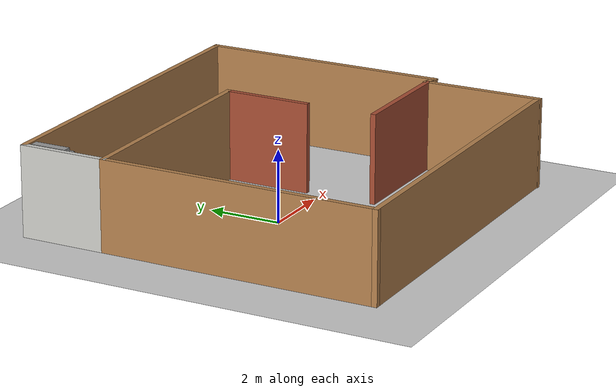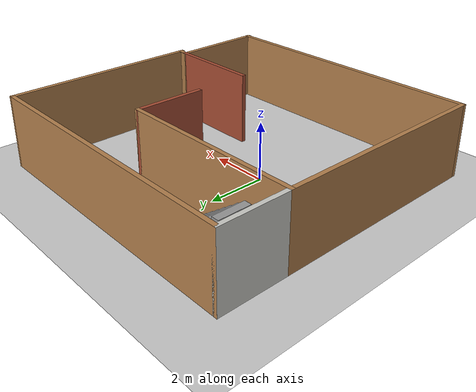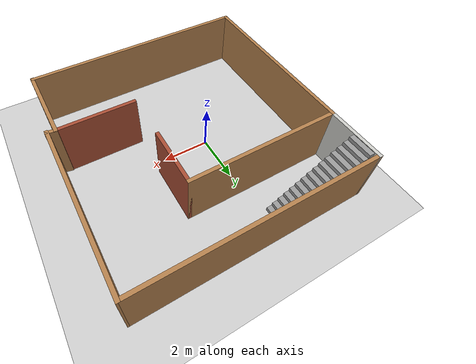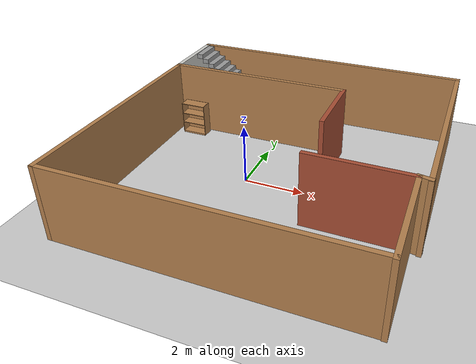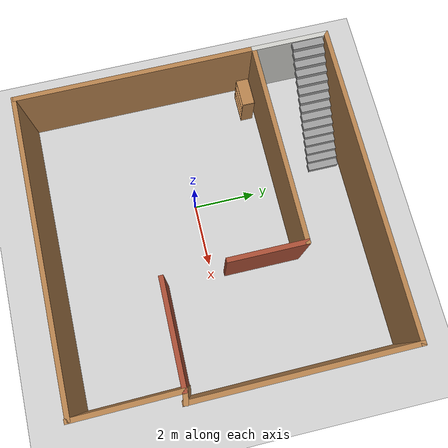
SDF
<sdf version="1.6">
 <world name="default">
  <light name="sun" type="directional">
   <pose>0 0 10 0 -0 0</pose>
   <diffuse>0.8 0.8 0.8 1</diffuse>
   <specular>0.2 0.2 0.2 1</specular>
   <attenuation>
    <range>1000</range>
    <constant>0.9</constant>
    <linear>0.01</linear>
    <quadratic>0.001</quadratic>
   </attenuation>
   <direction>-0.5 0.1 -0.9</direction>
  </light>
  <model name="ground_plane">
   <static>1</static>
   <link name="link">
    <collision name="collision">
     <geometry><plane><normal>0 0 1</normal><size>100 100</size></plane></geometry>
     <surface>
      <contact><collide_bitmask>65535</collide_bitmask></contact>
      <friction><ode><mu>100</mu><mu2>50</mu2></ode></friction>
     </surface>
    </collision>
    <visual name="visual">
     <cast_shadows>0</cast_shadows>
     <geometry><plane><normal>0 0 1</normal><size>100 100</size></plane></geometry>
     <material>
      <script><uri>file://media/materials/scripts/gazebo.material</uri><name>Gazebo/Grey</name></script>
     </material>
    </visual>
   </link>
  </model>
  <gravity>0 0 -9.8</gravity>
  <magnetic_field>6e-06 2.3e-05 -4.2e-05</magnetic_field>
  <atmosphere type="adiabatic"/>
  <physics name="default_physics" default="0" type="ode">
   <max_step_size>0.001</max_step_size>
   <real_time_factor>1</real_time_factor>
   <real_time_update_rate>1000</real_time_update_rate>
  </physics>
  <scene><ambient>0.4 0.4 0.4 1</ambient><background>0.7 0.7 0.7 1</background><shadows>1</shadows></scene>
  <audio><device>default</device></audio>
  <spherical_coordinates>
   <surface_model>EARTH_WGS84</surface_model>
   <latitude_deg>0</latitude_deg>
   <longitude_deg>0</longitude_deg>
   <elevation>0</elevation>
   <heading_deg>0</heading_deg>
  </spherical_coordinates>
  <model name="fdp_house">
   <pose>1.0129 0.190342 0 0 -0 0</pose>
   <link name="Stairs_0">
    <visual name="Stairs_0_Visual_0">
     <pose>-1.47156 4.34007 0.083333 0 -0 -1.5708</pose>
     <geometry><box><size>1 0.233333 0.166667</size></box></geometry>
     <material>
      <script><uri>file://media/materials/scripts/gazebo.material</uri><name>Gazebo/Grey</name></script>
      <ambient>1 1 1 1</ambient>
     </material>
     <meta><layer>0</layer></meta>
    </visual>
    <collision name="Stairs_0_Collision_0">
     <geometry><box><size>1 0.233333 0.166667</size></box></geometry>
     <pose>-1.47156 4.34007 0.083333 0 -0 -1.5708</pose>
    </collision>
    <visual name="Stairs_0_Visual_1">
     <pose>-1.70489 4.34007 0.25 0 -0 -1.5708</pose>
     <geometry><box><size>1 0.233333 0.166667</size></box></geometry>
     <material>
      <script><uri>file://media/materials/scripts/gazebo.material</uri><name>Gazebo/Grey</name></script>
      <ambient>1 1 1 1</ambient>
     </material>
     <meta><layer>0</layer></meta>
    </visual>
    <collision name="Stairs_0_Collision_1">
     <geometry><box><size>1 0.233333 0.166667</size></box></geometry>
     <pose>-1.70489 4.34007 0.25 0 -0 -1.5708</pose>
    </collision>
    <visual name="Stairs_0_Visual_2">
     <pose>-1.93823 4.34007 0.416667 0 -0 -1.5708</pose>
     <geometry><box><size>1 0.233333 0.166667</size></box></geometry>
     <material>
      <script><uri>file://media/materials/scripts/gazebo.material</uri><name>Gazebo/Grey</name></script>
      <ambient>1 1 1 1</ambient>
     </material>
     <meta><layer>0</layer></meta>
    </visual>
    <collision name="Stairs_0_Collision_2">
     <geometry><box><size>1 0.233333 0.166667</size></box></geometry>
     <pose>-1.93823 4.34007 0.416667 0 -0 -1.5708</pose>
    </collision>
    <visual name="Stairs_0_Visual_3">
     <pose>-2.17156 4.34007 0.583333 0 -0 -1.5708</pose>
     <geometry><box><size>1 0.233333 0.166667</size></box></geometry>
     <material>
      <script><uri>file://media/materials/scripts/gazebo.material</uri><name>Gazebo/Grey</name></script>
      <ambient>1 1 1 1</ambient>
     </material>
     <meta><layer>0</layer></meta>
    </visual>
    <collision name="Stairs_0_Collision_3">
     <geometry><box><size>1 0.233333 0.166667</size></box></geometry>
     <pose>-2.17156 4.34007 0.583333 0 -0 -1.5708</pose>
    </collision>
    <visual name="Stairs_0_Visual_4">
     <pose>-2.40489 4.34007 0.75 0 -0 -1.5708</pose>
     <geometry><box><size>1 0.233333 0.166667</size></box></geometry>
     <material>
      <script><uri>file://media/materials/scripts/gazebo.material</uri><name>Gazebo/Grey</name></script>
      <ambient>1 1 1 1</ambient>
     </material>
     <meta><layer>0</layer></meta>
    </visual>
    <collision name="Stairs_0_Collision_4">
     <geometry><box><size>1 0.233333 0.166667</size></box></geometry>
     <pose>-2.40489 4.34007 0.75 0 -0 -1.5708</pose>
    </collision>
    <visual name="Stairs_0_Visual_5">
     <pose>-2.63823 4.34007 0.916667 0 -0 -1.5708</pose>
     <geometry><box><size>1 0.233333 0.166667</size></box></geometry>
     <material>
      <script><uri>file://media/materials/scripts/gazebo.material</uri><name>Gazebo/Grey</name></script>
      <ambient>1 1 1 1</ambient>
     </material>
     <meta><layer>0</layer></meta>
    </visual>
    <collision name="Stairs_0_Collision_5">
     <geometry><box><size>1 0.233333 0.166667</size></box></geometry>
     <pose>-2.63823 4.34007 0.916667 0 -0 -1.5708</pose>
    </collision>
    <visual name="Stairs_0_Visual_6">
     <pose>-2.87156 4.34007 1.08333 0 -0 -1.5708</pose>
     <geometry><box><size>1 0.233333 0.166667</size></box></geometry>
     <material>
      <script><uri>file://media/materials/scripts/gazebo.material</uri><name>Gazebo/Grey</name></script>
      <ambient>1 1 1 1</ambient>
     </material>
     <meta><layer>0</layer></meta>
    </visual>
    <collision name="Stairs_0_Collision_6">
     <geometry><box><size>1 0.233333 0.166667</size></box></geometry>
     <pose>-2.87156 4.34007 1.08333 0 -0 -1.5708</pose>
    </collision>
    <visual name="Stairs_0_Visual_7">
     <pose>-3.10489 4.34007 1.25 0 -0 -1.5708</pose>
     <geometry><box><size>1 0.233333 0.166667</size></box></geometry>
     <material>
      <script><uri>file://media/materials/scripts/gazebo.material</uri><name>Gazebo/Grey</name></script>
      <ambient>1 1 1 1</ambient>
     </material>
     <meta><layer>0</layer></meta>
    </visual>
    <collision name="Stairs_0_Collision_7">
     <geometry><box><size>1 0.233333 0.166667</size></box></geometry>
     <pose>-3.10489 4.34007 1.25 0 -0 -1.5708</pose>
    </collision>
    <visual name="Stairs_0_Visual_8">
     <pose>-3.33823 4.34007 1.41667 0 -0 -1.5708</pose>
     <geometry><box><size>1 0.233333 0.166667</size></box></geometry>
     <material>
      <script><uri>file://media/materials/scripts/gazebo.material</uri><name>Gazebo/Grey</name></script>
      <ambient>1 1 1 1</ambient>
     </material>
     <meta><layer>0</layer></meta>
    </visual>
    <collision name="Stairs_0_Collision_8">
     <geometry><box><size>1 0.233333 0.166667</size></box></geometry>
     <pose>-3.33823 4.34007 1.41667 0 -0 -1.5708</pose>
    </collision>
    <visual name="Stairs_0_Visual_9">
     <pose>-3.57156 4.34007 1.58333 0 -0 -1.5708</pose>
     <geometry><box><size>1 0.233333 0.166667</size></box></geometry>
     <material>
      <script><uri>file://media/materials/scripts/gazebo.material</uri><name>Gazebo/Grey</name></script>
      <ambient>1 1 1 1</ambient>
     </material>
     <meta><layer>0</layer></meta>
    </visual>
    <collision name="Stairs_0_Collision_9">
     <geometry><box><size>1 0.233333 0.166667</size></box></geometry>
     <pose>-3.57156 4.34007 1.58333 0 -0 -1.5708</pose>
    </collision>
    <visual name="Stairs_0_Visual_10">
     <pose>-3.80489 4.34007 1.75 0 -0 -1.5708</pose>
     <geometry><box><size>1 0.233333 0.166667</size></box></geometry>
     <material>
      <script><uri>file://media/materials/scripts/gazebo.material</uri><name>Gazebo/Grey</name></script>
      <ambient>1 1 1 1</ambient>
     </material>
     <meta><layer>0</layer></meta>
    </visual>
    <collision name="Stairs_0_Collision_10">
     <geometry><box><size>1 0.233333 0.166667</size></box></geometry>
     <pose>-3.80489 4.34007 1.75 0 -0 -1.5708</pose>
    </collision>
    <visual name="Stairs_0_Visual_11">
     <pose>-4.03823 4.34007 1.91667 0 -0 -1.5708</pose>
     <geometry><box><size>1 0.233333 0.166667</size></box></geometry>
     <material>
      <script><uri>file://media/materials/scripts/gazebo.material</uri><name>Gazebo/Grey</name></script>
      <ambient>1 1 1 1</ambient>
     </material>
     <meta><layer>0</layer></meta>
    </visual>
    <collision name="Stairs_0_Collision_11">
     <geometry><box><size>1 0.233333 0.166667</size></box></geometry>
     <pose>-4.03823 4.34007 1.91667 0 -0 -1.5708</pose>
    </collision>
    <visual name="Stairs_0_Visual_12">
     <pose>-4.27156 4.34007 2.08333 0 -0 -1.5708</pose>
     <geometry><box><size>1 0.233333 0.166667</size></box></geometry>
     <material>
      <script><uri>file://media/materials/scripts/gazebo.material</uri><name>Gazebo/Grey</name></script>
      <ambient>1 1 1 1</ambient>
     </material>
     <meta><layer>0</layer></meta>
    </visual>
    <collision name="Stairs_0_Collision_12">
     <geometry><box><size>1 0.233333 0.166667</size></box></geometry>
     <pose>-4.27156 4.34007 2.08333 0 -0 -1.5708</pose>
    </collision>
    <visual name="Stairs_0_Visual_13">
     <pose>-4.50489 4.34007 2.25 0 -0 -1.5708</pose>
     <geometry><box><size>1 0.233333 0.166667</size></box></geometry>
     <material>
      <script><uri>file://media/materials/scripts/gazebo.material</uri><name>Gazebo/Grey</name></script>
      <ambient>1 1 1 1</ambient>
     </material>
     <meta><layer>0</layer></meta>
    </visual>
    <collision name="Stairs_0_Collision_13">
     <geometry><box><size>1 0.233333 0.166667</size></box></geometry>
     <pose>-4.50489 4.34007 2.25 0 -0 -1.5708</pose>
    </collision>
    <visual name="Stairs_0_Visual_14">
     <pose>-4.73823 4.34007 2.41667 0 -0 -1.5708</pose>
     <geometry><box><size>1 0.233333 0.166667</size></box></geometry>
     <material>
      <script><uri>file://media/materials/scripts/gazebo.material</uri><name>Gazebo/Grey</name></script>
      <ambient>1 1 1 1</ambient>
     </material>
     <meta><layer>0</layer></meta>
    </visual>
    <collision name="Stairs_0_Collision_14">
     <geometry><box><size>1 0.233333 0.166667</size></box></geometry>
     <pose>-4.73823 4.34007 2.41667 0 -0 -1.5708</pose>
    </collision>
   </link>
   <link name="Wall_0">
    <collision name="Wall_0_Collision">
     <geometry><box><size>3.31147 0.15 2.5</size></box></geometry>
     <pose>0 0 1.25 0 -0 0</pose>
    </collision>
    <visual name="Wall_0_Visual">
     <pose>0 0 1.25 0 -0 0</pose>
     <geometry><box><size>3.31147 0.15 2.5</size></box></geometry>
     <material>
      <script><uri>file://media/materials/scripts/gazebo.material</uri><name>Gazebo/Bricks</name></script>
      <ambient>1 1 1 1</ambient>
     </material>
     <meta><layer>0</layer></meta>
    </visual>
    <pose>3.04168 -1.71947 0 0 -0 -0.00872</pose>
   </link>
   <link name="Wall_1">
    <collision name="Wall_1_Collision">
     <geometry><box><size>3.40337 0.15 2.5</size></box></geometry>
     <pose>0 0 1.25 0 -0 0</pose>
    </collision>
    <visual name="Wall_1_Visual">
     <pose>0 0 1.25 0 -0 0</pose>
     <geometry><box><size>3.40337 0.15 2.5</size></box></geometry>
     <material>
      <script><uri>file://media/materials/scripts/gazebo.material</uri><name>Gazebo/Wood</name></script>
      <ambient>1 1 1 1</ambient>
     </material>
     <meta><layer>0</layer></meta>
    </visual>
    <pose>4.64554 -3.35977 0 0 -0 -1.55658</pose>
   </link>
   <link name="Wall_10">
    <collision name="Wall_10_Collision">
     <geometry><box><size>6.93077 0.15 2.5</size></box></geometry>
     <pose>0 0 1.25 0 -0 0</pose>
    </collision>
    <visual name="Wall_10_Visual">
     <pose>0 0 1.25 0 -0 0</pose>
     <geometry><box><size>6.93077 0.15 2.5</size></box></geometry>
     <material>
      <script><uri>file://media/materials/scripts/gazebo.material</uri><name>Gazebo/Wood</name></script>
      <ambient>1 1 1 1</ambient>
     </material>
     <meta><layer>0</layer></meta>
    </visual>
    <pose>4.91867 1.59654 0 0 -0 -1.56397</pose>
   </link>
   <link name="Wall_11">
    <collision name="Wall_11_Collision">
     <geometry><box><size>0.475075 0.15 2.5</size></box></geometry>
     <pose>0 0 1.25 0 -0 0</pose>
    </collision>
    <visual name="Wall_11_Visual">
     <pose>0 0 1.25 0 -0 0</pose>
     <geometry><box><size>0.475075 0.15 2.5</size></box></geometry>
     <material>
      <script><uri>file://media/materials/scripts/gazebo.material</uri><name>Gazebo/Wood</name></script>
      <ambient>1 1 1 1</ambient>
     </material>
     <meta><layer>0</layer></meta>
    </visual>
    <pose>4.78211 -1.74038 0 0 -0 2.95433</pose>
   </link>
   <link name="Wall_2">
    <collision name="Wall_2_Collision">
     <geometry><box><size>9.75 0.15 2.5</size></box></geometry>
     <pose>0 0 1.25 0 -0 0</pose>
    </collision>
    <visual name="Wall_2_Visual">
     <pose>0 0 1.25 0 -0 0</pose>
     <geometry><box><size>9.75 0.15 2.5</size></box></geometry>
     <material>
      <script><uri>file://media/materials/scripts/gazebo.material</uri><name>Gazebo/Wood</name></script>
      <ambient>1 1 1 1</ambient>
     </material>
     <meta><layer>0</layer></meta>
    </visual>
    <pose>-0.154456 -4.96316 0 0 -0 3.14159</pose>
   </link>
   <link name="Wall_4">
    <collision name="Wall_4_Collision">
     <geometry><box><size>7.75 0.15 2.5</size></box></geometry>
     <pose>0 0 1.25 0 -0 0</pose>
    </collision>
    <visual name="Wall_4_Visual">
     <pose>0 0 1.25 0 -0 0</pose>
     <geometry><box><size>7.75 0.15 2.5</size></box></geometry>
     <material>
      <script><uri>file://media/materials/scripts/gazebo.material</uri><name>Gazebo/Wood</name></script>
      <ambient>1 1 1 1</ambient>
     </material>
     <meta><layer>0</layer></meta>
    </visual>
    <pose>-4.95446 -1.16316 0 0 -0 1.5708</pose>
   </link>
   <link name="Wall_5">
    <collision name="Wall_5_Collision">
     <geometry><box><size>6.5 0.15 2.5</size></box></geometry>
     <pose>0 0 1.25 0 -0 0</pose>
    </collision>
    <visual name="Wall_5_Visual">
     <pose>0 0 1.25 0 -0 0</pose>
     <geometry><box><size>6.5 0.15 2.5</size></box></geometry>
     <material>
      <script><uri>file://media/materials/scripts/gazebo.material</uri><name>Gazebo/Wood</name></script>
      <ambient>1 1 1 1</ambient>
     </material>
     <meta><layer>0</layer></meta>
    </visual>
    <pose>-1.77946 2.63684 0 0 -0 0</pose>
   </link>
   <link name="Wall_6">
    <collision name="Wall_6_Collision">
     <geometry><box><size>2.5 0.15 2.5</size></box></geometry>
     <pose>0 0 1.25 0 -0 0</pose>
    </collision>
    <visual name="Wall_6_Visual">
     <pose>0 0 1.25 0 -0 0</pose>
     <geometry><box><size>2.5 0.15 2.5</size></box></geometry>
     <material>
      <script><uri>file://media/materials/scripts/gazebo.material</uri><name>Gazebo/Bricks</name></script>
      <ambient>1 1 1 1</ambient>
     </material>
     <meta><layer>0</layer></meta>
    </visual>
    <pose>1.39554 1.46184 0 0 -0 -1.5708</pose>
   </link>
   <link name="Wall_8">
    <collision name="Wall_8_Collision">
     <geometry><box><size>2.5 0.15 2.5</size></box></geometry>
     <pose>0 0 1.25 0 -0 0</pose>
    </collision>
    <visual name="Wall_8_Visual">
     <pose>0 0 1.25 0 -0 0</pose>
     <geometry><box><size>2.5 0.15 2.5</size></box></geometry>
     <material>
      <script><uri>file://media/materials/scripts/gazebo.material</uri><name>Gazebo/CeilingTiled</name></script>
      <ambient>1 1 1 1</ambient>
     </material>
     <meta><layer>0</layer></meta>
    </visual>
    <pose>-4.95446 3.81184 0 0 -0 1.5708</pose>
   </link>
   <link name="Wall_9">
    <collision name="Wall_9_Collision">
     <geometry><box><size>10 0.15 2.5</size></box></geometry>
     <pose>0 0 1.25 0 -0 0</pose>
    </collision>
    <visual name="Wall_9_Visual">
     <pose>0 0 1.25 0 -0 0</pose>
     <geometry><box><size>10 0.15 2.5</size></box></geometry>
     <material>
      <script><uri>file://media/materials/scripts/gazebo.material</uri><name>Gazebo/Wood</name></script>
      <ambient>1 1 1 1</ambient>
     </material>
     <meta><layer>0</layer></meta>
    </visual>
    <pose>-0.029456 4.98684 0 0 -0 0</pose>
   </link>
   <static>1</static>
  </model>
  <model name="bookshelf">
   <static>1</static>
   <link name="link">
    <inertial><mass>1</mass></inertial>
    <collision name="back">
     <pose>0 0.005 0.6 0 -0 0</pose>
     <geometry><box><size>0.9 0.01 1.2</size></box></geometry>
    </collision>
    <visual name="visual1">
     <pose>0 0.005 0.6 0 -0 0</pose>
     <geometry><box><size>0.9 0.01 1.2</size></box></geometry>
     <material>
      <script><uri>file://media/materials/scripts/gazebo.material</uri><name>Gazebo/Wood</name></script>
     </material>
    </visual>
    <collision name="left_side">
     <pose>0.45 -0.195 0.6 0 -0 0</pose>
     <geometry><box><size>0.02 0.4 1.2</size></box></geometry>
    </collision>
    <visual name="visual2">
     <pose>0.45 -0.195 0.6 0 -0 0</pose>
     <geometry><box><size>0.02 0.4 1.2</size></box></geometry>
     <material>
      <script><uri>file://media/materials/scripts/gazebo.material</uri><name>Gazebo/Wood</name></script>
     </material>
    </visual>
    <collision name="right_side">
     <pose>-0.45 -0.195 0.6 0 -0 0</pose>
     <geometry><box><size>0.02 0.4 1.2</size></box></geometry>
    </collision>
    <visual name="visual3">
     <pose>-0.45 -0.195 0.6 0 -0 0</pose>
     <geometry><box><size>0.02 0.4 1.2</size></box></geometry>
     <material>
      <script><uri>file://media/materials/scripts/gazebo.material</uri><name>Gazebo/Wood</name></script>
     </material>
    </visual>
    <collision name="bottom">
     <pose>0 -0.195 0.03 0 -0 0</pose>
     <geometry><box><size>0.88 0.4 0.06</size></box></geometry>
    </collision>
    <visual name="visual4">
     <pose>0 -0.195 0.03 0 -0 0</pose>
     <geometry><box><size>0.88 0.4 0.06</size></box></geometry>
     <material>
      <script><uri>file://media/materials/scripts/gazebo.material</uri><name>Gazebo/Wood</name></script>
     </material>
    </visual>
    <collision name="top">
     <pose>0 -0.195 1.19 0 -0 0</pose>
     <geometry><box><size>0.88 0.4 0.02</size></box></geometry>
    </collision>
    <visual name="visual5">
     <pose>0 -0.195 1.19 0 -0 0</pose>
     <geometry><box><size>0.88 0.4 0.02</size></box></geometry>
     <material>
      <script><uri>file://media/materials/scripts/gazebo.material</uri><name>Gazebo/Wood</name></script>
     </material>
    </visual>
    <collision name="low_shelf">
     <pose>0 -0.195 0.43 0 -0 0</pose>
     <geometry><box><size>0.88 0.4 0.02</size></box></geometry>
    </collision>
    <visual name="visual6">
     <pose>0 -0.195 0.43 0 -0 0</pose>
     <geometry><box><size>0.88 0.4 0.02</size></box></geometry>
     <material>
      <script><uri>file://media/materials/scripts/gazebo.material</uri><name>Gazebo/Wood</name></script>
     </material>
    </visual>
    <collision name="high_shelf">
     <pose>0 -0.195 0.8 0 -0 0</pose>
     <geometry><box><size>0.88 0.4 0.02</size></box></geometry>
    </collision>
    <visual name="visual7">
     <pose>0 -0.195 0.8 0 -0 0</pose>
     <geometry><box><size>0.88 0.4 0.02</size></box></geometry>
     <material>
      <script><uri>file://media/materials/scripts/gazebo.material</uri><name>Gazebo/Wood</name></script>
     </material>
    </visual>
   </link>
   <pose>-3.1678 2.63359 0 0 -0 0</pose>
  </model>
 </world>
</sdf>
